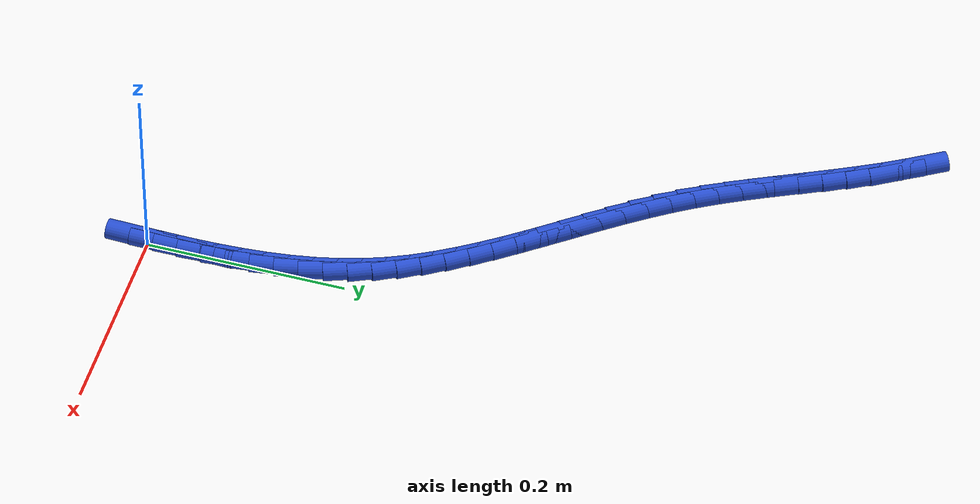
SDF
<sdf version="1.6">
 <world name="default">
  <model name="ground_plane">
   <static>1</static>
   <link name="link">
    <collision name="collision">
     <geometry><plane><normal>0 0 1</normal><size>100 100</size></plane></geometry>
     <surface><friction><ode><mu>100</mu><mu2>50</mu2></ode></friction></surface>
    </collision>
    <visual name="visual">
     <cast_shadows>0</cast_shadows>
     <geometry><plane><normal>0 0 1</normal><size>100 100</size></plane></geometry>
     <material>
      <script><uri>file://media/materials/scripts/gazebo.material</uri><name>Gazebo/WhiteGlow</name></script>
     </material>
    </visual>
   </link>
  </model>
  <model name="line">
   <link name="link_1">
    <pose>0.0005887357007303064 0.024225076726662898 0.01 0 1.57 1.5649134735716728</pose>
    <collision name="collision">
     <geometry><cylinder><radius>0.01</radius><length>0.08</length></cylinder></geometry>
    </collision>
    <visual name="visual">
     <material>
      <script><name>Gazebo/Blue</name><uri>file://media/materials/scripts/gazebo.material</uri></script>
     </material>
     <geometry><cylinder><radius>0.01</radius><length>0.08</length></cylinder></geometry>
    </visual>
   </link>
   <link name="link_2">
    <pose>0.0007316197944350821 0.048513026802965015 0.01 0 1.57 -1.5528984332686093</pose>
    <collision name="collision">
     <geometry><cylinder><radius>0.01</radius><length>0.08</length></cylinder></geometry>
    </collision>
    <visual name="visual">
     <material>
      <script><name>Gazebo/Blue</name><uri>file://media/materials/scripts/gazebo.material</uri></script>
     </material>
     <geometry><cylinder><radius>0.01</radius><length>0.08</length></cylinder></geometry>
    </visual>
   </link>
   <link name="link_3">
    <pose>0.00029726016754234353 0.07277919226686647 0.01 0 1.57 -1.523521618941803</pose>
    <collision name="collision">
     <geometry><cylinder><radius>0.01</radius><length>0.08</length></cylinder></geometry>
    </collision>
    <visual name="visual">
     <material>
      <script><name>Gazebo/Blue</name><uri>file://media/materials/scripts/gazebo.material</uri></script>
     </material>
     <geometry><cylinder><radius>0.01</radius><length>0.08</length></cylinder></geometry>
    </visual>
   </link>
   <link name="link_4">
    <pose>-0.0008457352935198898 0.0969389151563273 0.01 0 1.57 -1.4882501831795578</pose>
    <collision name="collision">
     <geometry><cylinder><radius>0.01</radius><length>0.08</length></cylinder></geometry>
    </collision>
    <visual name="visual">
     <material>
      <script><name>Gazebo/Blue</name><uri>file://media/materials/scripts/gazebo.material</uri></script>
     </material>
     <geometry><cylinder><radius>0.01</radius><length>0.08</length></cylinder></geometry>
    </visual>
   </link>
   <link name="link_5">
    <pose>-0.0028287587023236044 0.12090753750930766 0.01 0 1.57 -1.4467390822719493</pose>
    <collision name="collision">
     <geometry><cylinder><radius>0.01</radius><length>0.08</length></cylinder></geometry>
    </collision>
    <visual name="visual">
     <material>
      <script><name>Gazebo/Blue</name><uri>file://media/materials/scripts/gazebo.material</uri></script>
     </material>
     <geometry><cylinder><radius>0.01</radius><length>0.08</length></cylinder></geometry>
    </visual>
   </link>
   <link name="link_6">
    <pose>-0.0057832021724407824 0.1446004013637676 0.01 0 1.57 -1.3986288624564207</pose>
    <collision name="collision">
     <geometry><cylinder><radius>0.01</radius><length>0.08</length></cylinder></geometry>
    </collision>
    <visual name="visual">
     <material>
      <script><name>Gazebo/Blue</name><uri>file://media/materials/scripts/gazebo.material</uri></script>
     </material>
     <geometry><cylinder><radius>0.01</radius><length>0.08</length></cylinder></geometry>
    </visual>
   </link>
   <link name="link_7">
    <pose>-0.009840457817443403 0.16793284875766706 0.01 0 1.57 -1.3435927050525724</pose>
    <collision name="collision">
     <geometry><cylinder><radius>0.01</radius><length>0.08</length></cylinder></geometry>
    </collision>
    <visual name="visual">
     <material>
      <script><name>Gazebo/Blue</name><uri>file://media/materials/scripts/gazebo.material</uri></script>
     </material>
     <geometry><cylinder><radius>0.01</radius><length>0.08</length></cylinder></geometry>
    </visual>
   </link>
   <link name="link_8">
    <pose>-0.01513191775090346 0.19082022172896626 0.01 0 1.57 -1.2814021999206768</pose>
    <collision name="collision">
     <geometry><cylinder><radius>0.01</radius><length>0.08</length></cylinder></geometry>
    </collision>
    <visual name="visual">
     <material>
      <script><name>Gazebo/Blue</name><uri>file://media/materials/scripts/gazebo.material</uri></script>
     </material>
     <geometry><cylinder><radius>0.01</radius><length>0.08</length></cylinder></geometry>
    </visual>
   </link>
   <link name="link_9">
    <pose>-0.021788974086392927 0.21317786231562516 0.01 0 1.57 -1.212492922995718</pose>
    <collision name="collision">
     <geometry><cylinder><radius>0.01</radius><length>0.08</length></cylinder></geometry>
    </collision>
    <visual name="visual">
     <material>
      <script><name>Gazebo/Blue</name><uri>file://media/materials/scripts/gazebo.material</uri></script>
     </material>
     <geometry><cylinder><radius>0.01</radius><length>0.08</length></cylinder></geometry>
    </visual>
   </link>
   <link name="link_10">
    <pose>-0.029933086285535437 0.23492639995266337 0.01 0 1.57 -1.145155404982983</pose>
    <collision name="collision">
     <geometry><cylinder><radius>0.01</radius><length>0.08</length></cylinder></geometry>
    </collision>
    <visual name="visual">
     <material>
      <script><name>Gazebo/Blue</name><uri>file://media/materials/scripts/gazebo.material</uri></script>
     </material>
     <geometry><cylinder><radius>0.01</radius><length>0.08</length></cylinder></geometry>
    </visual>
   </link>
   <link name="link_11">
    <pose>-0.039520625112863805 0.2560743448843829 0.01 0 1.57 -1.0865360976006897</pose>
    <collision name="collision">
     <geometry><cylinder><radius>0.01</radius><length>0.08</length></cylinder></geometry>
    </collision>
    <visual name="visual">
     <material>
      <script><name>Gazebo/Blue</name><uri>file://media/materials/scripts/gazebo.material</uri></script>
     </material>
     <geometry><cylinder><radius>0.01</radius><length>0.08</length></cylinder></geometry>
    </visual>
   </link>
   <link name="link_12">
    <pose>-0.050371889398334986 0.27670264182178117 0.01 0 1.57 -1.0370978475238046</pose>
    <collision name="collision">
     <geometry><cylinder><radius>0.01</radius><length>0.08</length></cylinder></geometry>
    </collision>
    <visual name="visual">
     <material>
      <script><name>Gazebo/Blue</name><uri>file://media/materials/scripts/gazebo.material</uri></script>
     </material>
     <geometry><cylinder><radius>0.01</radius><length>0.08</length></cylinder></geometry>
    </visual>
   </link>
   <link name="link_13">
    <pose>-0.062303116731490735 0.29689439737488704 0.01 0 1.57 -0.9968160540351102</pose>
    <collision name="collision">
     <geometry><cylinder><radius>0.01</radius><length>0.08</length></cylinder></geometry>
    </collision>
    <visual name="visual">
     <material>
      <script><name>Gazebo/Blue</name><uri>file://media/materials/scripts/gazebo.material</uri></script>
     </material>
     <geometry><cylinder><radius>0.01</radius><length>0.08</length></cylinder></geometry>
    </visual>
   </link>
   <link name="link_14">
    <pose>-0.07513054470187269 0.31673271815372955 0.01 0 1.57 -0.9655006327158399</pose>
    <collision name="collision">
     <geometry><cylinder><radius>0.01</radius><length>0.08</length></cylinder></geometry>
    </collision>
    <visual name="visual">
     <material>
      <script><name>Gazebo/Blue</name><uri>file://media/materials/scripts/gazebo.material</uri></script>
     </material>
     <geometry><cylinder><radius>0.01</radius><length>0.08</length></cylinder></geometry>
    </visual>
   </link>
   <link name="link_15">
    <pose>-0.08867041089902265 0.33630071076833773 0.01 0 1.57 -0.9428971027956308</pose>
    <collision name="collision">
     <geometry><cylinder><radius>0.01</radius><length>0.08</length></cylinder></geometry>
    </collision>
    <visual name="visual">
     <material>
      <script><name>Gazebo/Blue</name><uri>file://media/materials/scripts/gazebo.material</uri></script>
     </material>
     <geometry><cylinder><radius>0.01</radius><length>0.08</length></cylinder></geometry>
    </visual>
   </link>
   <link name="link_16">
    <pose>-0.1027389529124823 0.3556814818287406 0.01 0 1.57 -0.9287588735910989</pose>
    <collision name="collision">
     <geometry><cylinder><radius>0.01</radius><length>0.08</length></cylinder></geometry>
    </collision>
    <visual name="visual">
     <material>
      <script><name>Gazebo/Blue</name><uri>file://media/materials/scripts/gazebo.material</uri></script>
     </material>
     <geometry><cylinder><radius>0.01</radius><length>0.08</length></cylinder></geometry>
    </visual>
   </link>
   <link name="link_17">
    <pose>-0.11715240833179337 0.374958137944967 0.01 0 1.57 -0.9228936057417596</pose>
    <collision name="collision">
     <geometry><cylinder><radius>0.01</radius><length>0.08</length></cylinder></geometry>
    </collision>
    <visual name="visual">
     <material>
      <script><name>Gazebo/Blue</name><uri>file://media/materials/scripts/gazebo.material</uri></script>
     </material>
     <geometry><cylinder><radius>0.01</radius><length>0.08</length></cylinder></geometry>
    </visual>
   </link>
   <link name="link_18">
    <pose>-0.13172701474649756 0.39421378572704613 0.01 0 1.57 -0.9251886453365027</pose>
    <collision name="collision">
     <geometry><cylinder><radius>0.01</radius><length>0.08</length></cylinder></geometry>
    </collision>
    <visual name="visual">
     <material>
      <script><name>Gazebo/Blue</name><uri>file://media/materials/scripts/gazebo.material</uri></script>
     </material>
     <geometry><cylinder><radius>0.01</radius><length>0.08</length></cylinder></geometry>
    </visual>
   </link>
   <link name="link_19">
    <pose>-0.1462790097461366 0.41353153178500673 0.01 0 1.57 -0.935619777375196</pose>
    <collision name="collision">
     <geometry><cylinder><radius>0.01</radius><length>0.08</length></cylinder></geometry>
    </collision>
    <visual name="visual">
     <material>
      <script><name>Gazebo/Blue</name><uri>file://media/materials/scripts/gazebo.material</uri></script>
     </material>
     <geometry><cylinder><radius>0.01</radius><length>0.08</length></cylinder></geometry>
    </visual>
   </link>
   <link name="link_20">
    <pose>-0.16062463092025225 0.4329944827288781 0.01 0 1.57 -0.9542455594178907</pose>
    <collision name="collision">
     <geometry><cylinder><radius>0.01</radius><length>0.08</length></cylinder></geometry>
    </collision>
    <visual name="visual">
     <material>
      <script><name>Gazebo/Blue</name><uri>file://media/materials/scripts/gazebo.material</uri></script>
     </material>
     <geometry><cylinder><radius>0.01</radius><length>0.08</length></cylinder></geometry>
    </visual>
   </link>
   <link name="link_21">
    <pose>-0.17458011585838615 0.45268574516868887 0.01 0 1.57 -0.9811872266130017</pose>
    <collision name="collision">
     <geometry><cylinder><radius>0.01</radius><length>0.08</length></cylinder></geometry>
    </collision>
    <visual name="visual">
     <material>
      <script><name>Gazebo/Blue</name><uri>file://media/materials/scripts/gazebo.material</uri></script>
     </material>
     <geometry><cylinder><radius>0.01</radius><length>0.08</length></cylinder></geometry>
    </visual>
   </link>
   <link name="link_22">
    <pose>-0.18796170215008004 0.4726884257144683 0.01 0 1.57 -1.0165704666686322</pose>
    <collision name="collision">
     <geometry><cylinder><radius>0.01</radius><length>0.08</length></cylinder></geometry>
    </collision>
    <visual name="visual">
     <material>
      <script><name>Gazebo/Blue</name><uri>file://media/materials/scripts/gazebo.material</uri></script>
     </material>
     <geometry><cylinder><radius>0.01</radius><length>0.08</length></cylinder></geometry>
    </visual>
   </link>
   <link name="link_23">
    <pose>-0.20058609032451905 0.4930853885777595 0.01 0 1.57 -1.0556218456720694</pose>
    <collision name="collision">
     <geometry><cylinder><radius>0.01</radius><length>0.08</length></cylinder></geometry>
    </collision>
    <visual name="visual">
     <material>
      <script><name>Gazebo/Blue</name><uri>file://media/materials/scripts/gazebo.material</uri></script>
     </material>
     <geometry><cylinder><radius>0.01</radius><length>0.08</length></cylinder></geometry>
    </visual>
   </link>
   <link name="link_24">
    <pose>-0.21237368340686863 0.5139051986065156 0.01 0 1.57 -1.0872623813494495</pose>
    <collision name="collision">
     <geometry><cylinder><radius>0.01</radius><length>0.08</length></cylinder></geometry>
    </collision>
    <visual name="visual">
     <material>
      <script><name>Gazebo/Blue</name><uri>file://media/materials/scripts/gazebo.material</uri></script>
     </material>
     <geometry><cylinder><radius>0.01</radius><length>0.08</length></cylinder></geometry>
    </visual>
   </link>
   <link name="link_25">
    <pose>-0.22347904998644763 0.5350538098958054 0.01 0 1.57 -1.1099023591005426</pose>
    <collision name="collision">
     <geometry><cylinder><radius>0.01</radius><length>0.08</length></cylinder></geometry>
    </collision>
    <visual name="visual">
     <material>
      <script><name>Gazebo/Blue</name><uri>file://media/materials/scripts/gazebo.material</uri></script>
     </material>
     <geometry><cylinder><radius>0.01</radius><length>0.08</length></cylinder></geometry>
    </visual>
   </link>
   <link name="link_26">
    <pose>-0.2340888799992537 0.5564203575753895 0.01 0 1.57 -1.1235168623400216</pose>
    <collision name="collision">
     <geometry><cylinder><radius>0.01</radius><length>0.08</length></cylinder></geometry>
    </collision>
    <visual name="visual">
     <material>
      <script><name>Gazebo/Blue</name><uri>file://media/materials/scripts/gazebo.material</uri></script>
     </material>
     <geometry><cylinder><radius>0.01</radius><length>0.08</length></cylinder></geometry>
    </visual>
   </link>
   <link name="link_27">
    <pose>-0.2443898633812844 0.5778939767750282 0.01 0 1.57 -1.1280832406296324</pose>
    <collision name="collision">
     <geometry><cylinder><radius>0.01</radius><length>0.08</length></cylinder></geometry>
    </collision>
    <visual name="visual">
     <material>
      <script><name>Gazebo/Blue</name><uri>file://media/materials/scripts/gazebo.material</uri></script>
     </material>
     <geometry><cylinder><radius>0.01</radius><length>0.08</length></cylinder></geometry>
    </visual>
   </link>
   <link name="link_28">
    <pose>-0.25456869006853733 0.5993638026244821 0.01 0 1.57 -1.1235473831009095</pose>
    <collision name="collision">
     <geometry><cylinder><radius>0.01</radius><length>0.08</length></cylinder></geometry>
    </collision>
    <visual name="visual">
     <material>
      <script><name>Gazebo/Blue</name><uri>file://media/materials/scripts/gazebo.material</uri></script>
     </material>
     <geometry><cylinder><radius>0.01</radius><length>0.08</length></cylinder></geometry>
    </visual>
   </link>
   <link name="link_29">
    <pose>-0.26481204999701013 0.6207189702535117 0.01 0 1.57 -1.1098116122723358</pose>
    <collision name="collision">
     <geometry><cylinder><radius>0.01</radius><length>0.08</length></cylinder></geometry>
    </collision>
    <visual name="visual">
     <material>
      <script><name>Gazebo/Blue</name><uri>file://media/materials/scripts/gazebo.material</uri></script>
     </material>
     <geometry><cylinder><radius>0.01</radius><length>0.08</length></cylinder></geometry>
    </visual>
   </link>
   <link name="link_30">
    <pose>-0.2753066331027002 0.6418486147918769 0.01 0 1.57 -1.086758794405584</pose>
    <collision name="collision">
     <geometry><cylinder><radius>0.01</radius><length>0.08</length></cylinder></geometry>
    </collision>
    <visual name="visual">
     <material>
      <script><name>Gazebo/Blue</name><uri>file://media/materials/scripts/gazebo.material</uri></script>
     </material>
     <geometry><cylinder><radius>0.01</radius><length>0.08</length></cylinder></geometry>
    </visual>
   </link>
   <link name="link_31">
    <pose>-0.28623886736249976 0.6626420734082432 0.01 0 1.57 -1.0574428520418497</pose>
    <collision name="collision">
     <geometry><cylinder><radius>0.01</radius><length>0.08</length></cylinder></geometry>
    </collision>
    <visual name="visual">
     <material>
      <script><name>Gazebo/Blue</name><uri>file://media/materials/scripts/gazebo.material</uri></script>
     </material>
     <geometry><cylinder><radius>0.01</radius><length>0.08</length></cylinder></geometry>
    </visual>
   </link>
   <link name="link_32">
    <pose>-0.297735583628606 0.68303464822363 0.01 0 1.57 -1.0291176153465829</pose>
    <collision name="collision">
     <geometry><cylinder><radius>0.01</radius><length>0.08</length></cylinder></geometry>
    </collision>
    <visual name="visual">
     <material>
      <script><name>Gazebo/Blue</name><uri>file://media/materials/scripts/gazebo.material</uri></script>
     </material>
     <geometry><cylinder><radius>0.01</radius><length>0.08</length></cylinder></geometry>
    </visual>
   </link>
   <link name="link_280">
    <pose>3.3610267347050637e-18 6.245004513516506e-17 0.01 0 1.57 1.5454209969622645</pose>
    <collision name="collision">
     <geometry><cylinder><radius>0.01</radius><length>0.08</length></cylinder></geometry>
    </collision>
    <visual name="visual">
     <material>
      <script><name>Gazebo/Blue</name><uri>file://media/materials/scripts/gazebo.material</uri></script>
     </material>
     <geometry><cylinder><radius>0.01</radius><length>0.08</length></cylinder></geometry>
    </visual>
   </link>
   <link name="link_281">
    <pose>0.0006152485340982101 0.024240728224314938 0.01 0 1.57 1.5573337203607085</pose>
    <collision name="collision">
     <geometry><cylinder><radius>0.01</radius><length>0.08</length></cylinder></geometry>
    </collision>
    <visual name="visual">
     <material>
      <script><name>Gazebo/Blue</name><uri>file://media/materials/scripts/gazebo.material</uri></script>
     </material>
     <geometry><cylinder><radius>0.01</radius><length>0.08</length></cylinder></geometry>
    </visual>
   </link>
   <link name="link_282">
    <pose>0.0009437224613783057 0.04863823878418194 0.01 0 1.57 1.5513958698028594</pose>
    <collision name="collision">
     <geometry><cylinder><radius>0.01</radius><length>0.08</length></cylinder></geometry>
    </collision>
    <visual name="visual">
     <material>
      <script><name>Gazebo/Blue</name><uri>file://media/materials/scripts/gazebo.material</uri></script>
     </material>
     <geometry><cylinder><radius>0.01</radius><length>0.08</length></cylinder></geometry>
    </visual>
   </link>
  </model>
 </world>
</sdf>
